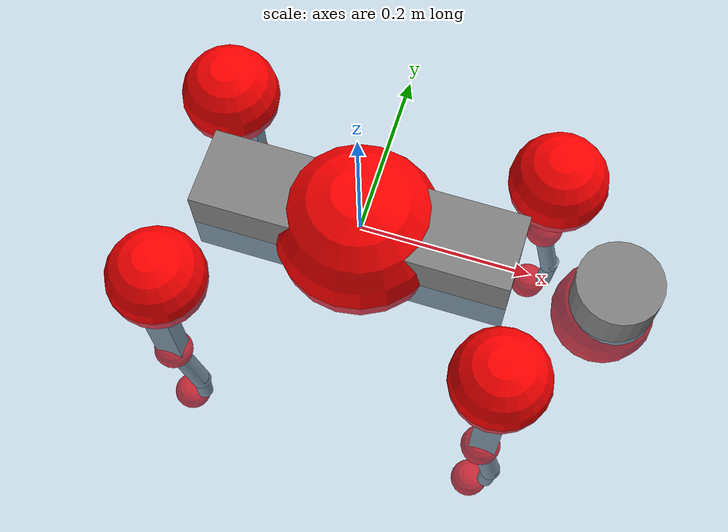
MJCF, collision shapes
<mujoco model="go2">
  <compiler angle="radian" assetdir="assets" balanceinertia="true" inertiafromgeom="false"/>

  <option timestep="0.005" density="1.2" viscosity="2e-05"/>

  <size nkey="1"/>

  <visual>
    <quality shadowsize="8192"/>
    <map shadowclip="0.5"/>
  </visual>

  <default>
    <default class="/">
      <geom contype="0" conaffinity="0" group="1" solref="-1000 -80"/>
      <site size="0.01 0.005 0.005" group="5"/>
      <general forcelimited="true" biastype="affine" gainprm="20" biasprm="0 -20 -0.5"/>
      <default class="go2">
        <joint armature="0.01" damping="0.01" frictionloss="0.2"/>
        <geom condim="1" margin="0.001"/>
        <default class="visual">
          <geom type="mesh" group="2"/>
        </default>
        <default class="collision">
          <geom group="3"/>
          <default class="foot">
            <geom size="0.022 0 0" condim="6" priority="1" friction="0.8 0.02 0.01" solimp="0.015 1 0.022"/>
          </default>
        </default>
        <default class="reward_collision_sphere">
          <geom group="5" rgba="1 0 0 1"/>
        </default>
      </default>
    </default>
  </default>

  <asset>
    <texture type="skybox" colorspace="auto" name="//unnamed_texture_0" builtin="gradient" rgb1="0.95 0.95 0.95" rgb2="0.95 0.95 0.95" width="100" height="600"/>
    <texture type="2d" colorspace="auto" name="texplane" builtin="checker" rgb1="0.345 0.575 0.748" rgb2="0.345 0.575 0.748" markrgb="1 1 1" width="512" height="512"/>
    <material name="MatPlane" class="/" texture="texplane" texuniform="true" texrepeat="2 2" specular="0.9"/>
    <material name="metal" class="/" rgba="0.9 0.95 0.95 1"/>
    <material name="black" class="/" rgba="0 0 0 1"/>
    <material name="white" class="/"/>
    <material name="gray" class="/" rgba="0.671705 0.692426 0.77427 1"/>
    <mesh name="base_0" class="/" file="base_0.obj"/>
    <mesh name="base_1" class="/" file="base_1.obj"/>
    <mesh name="base_2" class="/" file="base_2.obj"/>
    <mesh name="base_3" class="/" file="base_3.obj"/>
    <mesh name="base_4" class="/" file="base_4.obj"/>
    <mesh name="hip_0" class="/" file="hip_0.obj"/>
    <mesh name="hip_1" class="/" file="hip_1.obj"/>
    <mesh name="thigh_0" class="/" file="thigh_0.obj"/>
    <mesh name="thigh_1" class="/" file="thigh_1.obj"/>
    <mesh name="thigh_mirror_0" class="/" file="thigh_mirror_0.obj"/>
    <mesh name="thigh_mirror_1" class="/" file="thigh_mirror_1.obj"/>
    <mesh name="calf_0" class="/" file="calf_0.obj"/>
    <mesh name="calf_1" class="/" file="calf_1.obj"/>
    <mesh name="calf_mirror_0" class="/" file="calf_mirror_0.obj"/>
    <mesh name="calf_mirror_1" class="/" file="calf_mirror_1.obj"/>
    <mesh name="foot" class="/" file="foot.obj"/>
  </asset>

  <worldbody>
    <geom name="floor" class="/" size="100 100 0.125" type="plane" group="0" material="MatPlane"/>
    <light name="toplight_shadow" class="/" pos="0 0 5" dir="0.0990148 0.0990148 -0.990148" type="directional" ambient="0.04 0.04 0.04" diffuse="0.55 0.55 0.55" specular="0.12 0.12 0.12"/>
    <light name="toplight_fill" class="/" pos="0 0 5" dir="0.0990148 0.0990148 -0.990148" type="directional" castshadow="false" ambient="0.04 0.04 0.04" diffuse="0.3 0.3 0.3" specular="0.08 0.08 0.08"/>
    <body name="trunk" childclass="go2" pos="4.39314e-05 -0.00281333 -0.000737151" quat="1 1.38147e-05 1.48393e-05 5.41087e-05">
      <inertial pos="0.0222889 -0.00295515 -0.0044197" quat="0.000133187 0.71944 -0.00281686 0.694549" mass="6.52102" diaginertia="0.128514 0.129443 0.0109752"/>
      <joint name="//unnamed_joint_0" type="free" armature="0" damping="0" frictionloss="0"/>
      <geom name="//unnamed_geom_1" class="visual" material="black" mesh="base_0"/>
      <geom name="//unnamed_geom_2" class="visual" material="black" mesh="base_1"/>
      <geom name="//unnamed_geom_3" class="visual" material="black" mesh="base_2"/>
      <geom name="//unnamed_geom_4" class="visual" material="white" mesh="base_3"/>
      <geom name="//unnamed_geom_5" class="visual" material="gray" mesh="base_4"/>
      <geom name="trunk_1" class="collision" size="0.185482 0.0460994 0.0562067" type="box"/>
      <geom name="trunk_2" class="collision" size="0.0493041 0.0443737" pos="0.297341 0 0.00852799" type="cylinder"/>
      <geom name="trunk_3" class="collision" size="0.0463459" pos="0.305688 0 -0.0511679"/>
      <geom name="//unnamed_geom_9" class="reward_collision_sphere" size="0.0986083"/>
      <geom name="//unnamed_geom_10" class="reward_collision_sphere" size="0.059165" pos="0.292125 0 -0.038376"/>
      <site name="imu" pos="-0.0127157 0.0108752 0.0220271" size="0.00986083"/>
      <camera name="track" pos="0 -2.1243 0" quat="0.707107 0.707107 0 0" mode="trackcom"/>
      <camera name="ego_camera" pos="0.32551 0 0.038376" quat="-0.5 -0.5 0.5 0.5"/>
      <body name="FL_hip" pos="0.20387 0.0512378 0.00227879" quat="0.999999 0.000425555 -0.00114286 -0.000263049">
        <inertial pos="-0.00455578 0.00232048 0.00183596" quat="0.497817 0.496129 0.50472 0.50129" mass="0.62366" diaginertia="0.00109126 0.000767706 0.0002161"/>
        <joint name="FL_hip_joint" pos="0 0 0" axis="0.999985 0.00514707 0.00186736" stiffness="0.013146" range="-1.01393 1.08636" armature="0.00979474" damping="0" frictionloss="0.223156"/>
        <geom name="//unnamed_geom_11" class="visual" material="metal" mesh="hip_0"/>
        <geom name="//unnamed_geom_12" class="visual" material="gray" mesh="hip_1"/>
        <geom name="//unnamed_geom_13" class="collision" size="0.0453598 0.0197217" pos="0 0.0849718 0" quat="0.707107 0.707107 0 0" type="cylinder"/>
        <geom name="//unnamed_geom_14" class="reward_collision_sphere" size="0.059165" pos="0 0.0743503 0"/>
        <body name="FL_thigh" pos="-0.000296302 0.103242 0.000625374" quat="0.999999 0.000944841 0.00100687 0.000668722">
          <inertial pos="-0.00121706 -0.0212601 -0.0288915" quat="0.829438 0.0863042 -0.00646045 0.551854" mass="1.10321" diaginertia="0.00727511 0.0078871 0.00039597"/>
          <joint name="FL_thigh_joint" pos="0 0 0" axis="0.0128448 0.999824 0.0136456" stiffness="0.00540797" range="-1.53394 3.53972" armature="0.0112521" damping="0" frictionloss="0.204083"/>
          <geom name="//unnamed_geom_15" class="visual" material="metal" mesh="thigh_0"/>
          <geom name="//unnamed_geom_16" class="visual" material="gray" mesh="thigh_1"/>
          <geom name="//unnamed_geom_17" class="collision" size="0.105018 0.0120795 0.0167634" pos="0 0 -0.0908231" quat="0.707107 0 0.707107 0" type="box"/>
          <body name="FL_calf" pos="9.31747e-05 -0.00272542 -0.182667" quat="0.999999 0.000188931 -0.000954548 -0.000363748">
            <inertial pos="0.00917615 -0.000770288 -0.122255" quat="0.710605 0.00108628 -0.00464648 0.703575" mass="0.234513" diaginertia="0.00177845 0.00203842 2.33022e-05"/>
            <joint name="FL_calf_joint" pos="0 0 0" axis="0.00616027 0.999977 0.00283491" range="-2.76513 -0.830495" armature="0.00862757" damping="0.00323339" frictionloss="0.199212"/>
            <geom name="//unnamed_geom_18" class="visual" material="gray" mesh="calf_0"/>
            <geom name="//unnamed_geom_19" class="visual" material="black" mesh="calf_1"/>
            <geom name="FL_calf0" class="collision" size="0.011833 0.059165" pos="0.00834642 0 -0.0511679" quat="0.994493 0 -0.104807 0" type="cylinder"/>
            <geom name="//unnamed_geom_21" class="collision" size="0.0108469 0.0320477" pos="0.020866 0 -0.126214" quat="0.999688 0 0.0249974 0" type="cylinder"/>
            <geom name="//unnamed_geom_22" class="visual" pos="0 0 -0.181646" quat="1 0 0 0" material="black" mesh="foot"/>
            <geom name="FL_foot" class="foot" size="0.0159603" pos="-0.0020866 0 -0.181646"/>
            <geom name="//unnamed_geom_24" class="reward_collision_sphere" size="0.0246521"/>
            <geom name="//unnamed_geom_25" class="reward_collision_sphere" size="0.0246521" pos="-0.0020866 0 -0.181646"/>
            <site name="FL_foot" class="foot" pos="-0.0020866 0 -0.181646" size="0.00986083"/>
          </body>
        </body>
      </body>
      <body name="FR_hip" pos="0.201468 -0.0517592 -0.00245122" quat="1 8.17364e-05 9.24156e-05 4.86014e-06">
        <inertial pos="-0.00565512 -0.00303454 -0.000423823" quat="0.49819 0.505873 0.499842 0.496042" mass="0.622825" diaginertia="0.00108266 0.000781494 0.000222276"/>
        <joint name="FR_hip_joint" pos="0 0 0" axis="0.999921 0.00885765 0.00892444" range="-1.04948 1.05503" armature="0.00983177" damping="0.0113197" frictionloss="0.202609"/>
        <geom name="//unnamed_geom_26" class="visual" pos="0 1.82376e-09 7.82248e-08" quat="4.63268e-05 1 0 0" material="metal" mesh="hip_0"/>
        <geom name="//unnamed_geom_27" class="visual" pos="0 2.95653e-09 -1.9348e-07" quat="4.63268e-05 1 0 0" material="gray" mesh="hip_1"/>
        <geom name="//unnamed_geom_28" class="collision" size="0.0453598 0.0197217" pos="0 -0.0849718 0" quat="0.707107 0.707107 0 0" type="cylinder"/>
        <geom name="//unnamed_geom_29" class="reward_collision_sphere" size="0.059165" pos="0 -0.0743503 0"/>
        <body name="FR_thigh" pos="0.00245621 -0.0997943 0.00234133" quat="1 -0.000493382 0.000698744 0.00029699">
          <inertial pos="-0.00407725 0.0216752 -0.027569" quat="0.5447 -0.0129855 0.0810093 0.834608" mass="1.18214" diaginertia="0.00755488 0.00818445 0.000405902"/>
          <joint name="FR_thigh_joint" pos="0 0 0" axis="0.00330246 -0.99999 0.00287929" range="-3.5369 1.57045" armature="0.00941447" damping="0.0127201" frictionloss="0.198297"/>
          <geom name="//unnamed_geom_30" class="visual" material="metal" mesh="thigh_mirror_0"/>
          <geom name="//unnamed_geom_31" class="visual" material="gray" mesh="thigh_mirror_1"/>
          <geom name="//unnamed_geom_32" class="collision" size="0.105018 0.0120795 0.0167634" pos="0 0 -0.0908231" quat="0.707107 0 0.707107 0" type="box"/>
          <body name="FR_calf" pos="-0.00274671 -0.00122884 -0.183595" quat="0.999999 0.00132664 -0.000326083 7.2297e-05">
            <inertial pos="0.00771083 0.000897309 -0.118333" quat="0.697468 -0.00304833 -0.00689867 0.716576" mass="0.228956" diaginertia="0.00182213 0.00196675 2.39792e-05"/>
            <joint name="FR_calf_joint" pos="0 0 0" axis="-0.0102073 -0.999945 0.00222914" range="0.815512 2.72346" armature="0.0110038" damping="0.0216071" frictionloss="0.170054"/>
            <geom name="//unnamed_geom_33" class="visual" material="gray" mesh="calf_mirror_0"/>
            <geom name="//unnamed_geom_34" class="visual" material="black" mesh="calf_mirror_1"/>
            <geom name="FR_calf0" class="collision" size="0.0128191 0.059165" pos="0.010433 0 -0.0511679" quat="0.995004 0 -0.0998334 0" type="cylinder"/>
            <geom name="//unnamed_geom_36" class="collision" size="0.0108469 0.0320477" pos="0.020866 0 -0.126214" quat="0.999688 0 0.0249974 0" type="cylinder"/>
            <geom name="//unnamed_geom_37" class="visual" pos="0 0 -0.181646" quat="1 0 0 0" material="black" mesh="foot"/>
            <geom name="FR_foot" class="foot" size="0.0202983" pos="-0.0020866 0 -0.181646"/>
            <geom name="//unnamed_geom_39" class="reward_collision_sphere" size="0.0246521"/>
            <geom name="//unnamed_geom_40" class="reward_collision_sphere" size="0.0246521" pos="-0.0020866 0 -0.181646"/>
            <site name="FR_foot" class="foot" pos="-0.0020866 0 -0.181646" size="0.00986083"/>
          </body>
        </body>
      </body>
      <body name="RL_hip" pos="-0.202261 0.0506439 0.0018684" quat="1 0.000126204 -4.83969e-05 0.000423828">
        <inertial pos="0.00541573 -0.000508669 0.00220274" quat="0.505745 0.49812 0.497094 0.498996" mass="0.659066" diaginertia="0.0011042 0.000816449 0.000219161"/>
        <joint name="RL_hip_joint" pos="0 0 0" axis="-0.999759 -0.00678645 0.0208632" range="-1.0594 1.0184" armature="0.0098514" damping="0.011936" frictionloss="0.188282"/>
        <geom name="//unnamed_geom_41" class="visual" pos="-1.65958e-09 0 -3.25317e-07" quat="4.63268e-05 0 1 0" material="metal" mesh="hip_0"/>
        <geom name="//unnamed_geom_42" class="visual" pos="-2.69039e-09 0 -2.8851e-07" quat="4.63268e-05 0 1 0" material="gray" mesh="hip_1"/>
        <geom name="//unnamed_geom_43" class="collision" size="0.0453598 0.0197217" pos="0 0.0849718 0" quat="0.707107 0.707107 0 0" type="cylinder"/>
        <geom name="//unnamed_geom_44" class="reward_collision_sphere" size="0.059165" pos="0 0.0743503 0"/>
        <body name="RL_thigh" pos="-0.00217809 0.101377 -0.00139728" quat="1 -8.30112e-05 -0.000380296 -0.000138836">
          <inertial pos="-0.00420579 -0.0225648 -0.0304417" quat="0.827923 0.0864078 -0.0093587 0.554067" mass="1.14041" diaginertia="0.00745336 0.00808237 0.000403682"/>
          <joint name="RL_thigh_joint" pos="0 0 0" axis="-0.00271808 0.999995 -0.00129693" stiffness="0.00542939" range="-0.578573 4.58456" armature="0.00948654" damping="0" frictionloss="0.204646"/>
          <geom name="//unnamed_geom_45" class="visual" material="metal" mesh="thigh_0"/>
          <geom name="//unnamed_geom_46" class="visual" material="gray" mesh="thigh_1"/>
          <geom name="//unnamed_geom_47" class="collision" size="0.105018 0.0120795 0.0167634" pos="0 0 -0.0908231" quat="0.707107 0 0.707107 0" type="box"/>
          <body name="RL_calf" pos="-0.00194412 -0.00238805 -0.181616" quat="1 -0.000281647 -0.000194172 0.000103548">
            <inertial pos="0.00717249 -0.000338829 -0.119445" quat="0.710466 0.00174705 -0.00402327 0.703718" mass="0.245345" diaginertia="0.00196066 0.0020404 2.46272e-05"/>
            <joint name="RL_calf_joint" pos="0 0 0" axis="-0.00261685 0.999903 -0.0136758" stiffness="0.00239514" range="-2.67943 -0.892705" armature="0.0100936" damping="0" frictionloss="0.192053"/>
            <geom name="//unnamed_geom_48" class="visual" material="gray" mesh="calf_0"/>
            <geom name="//unnamed_geom_49" class="visual" material="black" mesh="calf_1"/>
            <geom name="RL_calf0" class="collision" size="0.0128191 0.059165" pos="0.010433 0 -0.0511679" quat="0.995004 0 -0.0998334 0" type="cylinder"/>
            <geom name="//unnamed_geom_51" class="collision" size="0.0108469 0.0320477" pos="0.020866 0 -0.126214" quat="0.999688 0 0.0249974 0" type="cylinder"/>
            <geom name="//unnamed_geom_52" class="visual" pos="0 0 -0.181646" quat="1 0 0 0" material="black" mesh="foot"/>
            <geom name="RL_foot" class="foot" size="0.0198582" pos="-0.0020866 0 -0.181646"/>
            <geom name="//unnamed_geom_54" class="reward_collision_sphere" size="0.0246521"/>
            <geom name="//unnamed_geom_55" class="reward_collision_sphere" size="0.0246521" pos="-0.0020866 0 -0.181646"/>
            <site name="RL_foot" class="foot" pos="-0.0020866 0 -0.181646" size="0.00986083"/>
          </body>
        </body>
      </body>
      <body name="RR_hip" pos="-0.20247 -0.0490463 -0.00335339" quat="0.999999 -0.00110276 0.000627452 5.16119e-05">
        <inertial pos="0.00504165 0.000851686 -0.00276775" quat="0.499966 0.49862 0.497739 0.503654" mass="0.668461" diaginertia="0.00116207 0.000835543 0.000229468"/>
        <joint name="RR_hip_joint" pos="0 0 0" axis="-0.999943 0.00779168 0.00732686" stiffness="0.00469093" range="-1.02472 0.995993" armature="0.00975845" damping="0.00340512" frictionloss="0.18827"/>
        <geom name="//unnamed_geom_56" class="visual" pos="1.66024e-09 1.82376e-09 -4.03542e-07" quat="2.14617e-09 4.63268e-05 4.63268e-05 -1" material="metal" mesh="hip_0"/>
        <geom name="//unnamed_geom_57" class="visual" pos="2.68877e-09 2.95653e-09 -9.50298e-08" quat="2.14617e-09 4.63268e-05 4.63268e-05 -1" material="gray" mesh="hip_1"/>
        <geom name="//unnamed_geom_58" class="collision" size="0.0453598 0.0197217" pos="0 -0.0849718 0" quat="0.707107 0.707107 0 0" type="cylinder"/>
        <geom name="//unnamed_geom_59" class="reward_collision_sphere" size="0.059165" pos="0 -0.0743503 0"/>
        <body name="RR_thigh" pos="0.000190471 -0.0988836 0.00150797" quat="0.999999 0.00138658 5.05748e-05 -0.000456855">
          <inertial pos="-0.00366911 0.0211397 -0.0255815" quat="0.550363 -0.0174958 0.087128 0.830183" mass="1.07229" diaginertia="0.00708051 0.00769874 0.000385296"/>
          <joint name="RR_thigh_joint" pos="0 0 0" axis="-0.00455513 -0.999989 0.00147811" range="-4.55821 0.568759" armature="0.00991751" damping="0.013001" frictionloss="0.18739"/>
          <geom name="//unnamed_geom_60" class="visual" material="metal" mesh="thigh_mirror_0"/>
          <geom name="//unnamed_geom_61" class="visual" material="gray" mesh="thigh_mirror_1"/>
          <geom name="//unnamed_geom_62" class="collision" size="0.105018 0.0120795 0.0167634" pos="0 0 -0.0908231" quat="0.707107 0 0.707107 0" type="box"/>
          <body name="RR_calf" pos="-0.000856227 -0.000353071 -0.181029" quat="1 0.000135848 3.1319e-05 0.000800147">
            <inertial pos="0.00805294 0.000620976 -0.120117" quat="0.704179 -0.00700755 -0.00155866 0.709986" mass="0.233891" diaginertia="0.00191335 0.00199235 2.38653e-05"/>
            <joint name="RR_calf_joint" pos="0 0 0" axis="-0.00604809 -0.999981 0.000674838" range="0.779294 2.77552" armature="0.00853966" damping="0.012057" frictionloss="0.201232"/>
            <geom name="//unnamed_geom_63" class="visual" material="gray" mesh="calf_mirror_0"/>
            <geom name="//unnamed_geom_64" class="visual" material="black" mesh="calf_mirror_1"/>
            <geom name="RR_calf0" class="collision" size="0.0128191 0.059165" pos="0.010433 0 -0.0511679" quat="0.995004 0 -0.0998334 0" type="cylinder"/>
            <geom name="//unnamed_geom_66" class="collision" size="0.0108469 0.0320477" pos="0.020866 0 -0.126214" quat="0.999688 0 0.0249974 0" type="cylinder"/>
            <geom name="//unnamed_geom_67" class="visual" pos="0 0 -0.181646" quat="1 0 0 0" material="black" mesh="foot"/>
            <geom name="RR_foot" class="foot" size="0.0195863" pos="-0.0020866 0 -0.181646"/>
            <geom name="//unnamed_geom_69" class="reward_collision_sphere" size="0.0246521"/>
            <geom name="//unnamed_geom_70" class="reward_collision_sphere" size="0.0246521" pos="-0.0020866 0 -0.181646"/>
            <site name="RR_foot" class="foot" pos="-0.0020866 0 -0.181646" size="0.00986083"/>
          </body>
        </body>
      </body>
    </body>
  </worldbody>

  <contact>
    <pair class="/" geom1="floor" geom2="FL_foot" name="//unnamed_contact_0"/>
    <pair class="/" geom1="floor" geom2="FR_foot" name="//unnamed_contact_1"/>
    <pair class="/" geom1="floor" geom2="RL_foot" name="//unnamed_contact_2"/>
    <pair class="/" geom1="floor" geom2="RR_foot" name="//unnamed_contact_3"/>
  </contact>

  <actuator>
    <general name="FL_hip" class="/" joint="FL_hip_joint" forcerange="-24.9822 24.9822" gainprm="20.9998" biasprm="0 -20.9998 -0.498756"/>
    <general name="FL_thigh" class="/" joint="FL_thigh_joint" forcerange="-21.1709 21.1709" gainprm="20.9998" biasprm="0 -20.9998 -0.498756"/>
    <general name="FL_calf" class="/" joint="FL_calf_joint" forcerange="-44.641 44.641" gainprm="20.9998" biasprm="0 -20.9998 -0.498756"/>
    <general name="FR_hip" class="/" joint="FR_hip_joint" forcerange="-25.445 25.445" gainprm="20.9998" biasprm="0 -20.9998 -0.498756"/>
    <general name="FR_thigh" class="/" joint="FR_thigh_joint" forcerange="-25.4324 25.4324" gainprm="20.9998" biasprm="0 -20.9998 -0.498756"/>
    <general name="FR_calf" class="/" joint="FR_calf_joint" forcerange="-48.9291 48.9291" gainprm="20.9998" biasprm="0 -20.9998 -0.498756"/>
    <general name="RL_hip" class="/" joint="RL_hip_joint" forcerange="-23.8485 23.8485" gainprm="20.9998" biasprm="0 -20.9998 -0.498756"/>
    <general name="RL_thigh" class="/" joint="RL_thigh_joint" forcerange="-22.4369 22.4369" gainprm="20.9998" biasprm="0 -20.9998 -0.498756"/>
    <general name="RL_calf" class="/" joint="RL_calf_joint" forcerange="-41.0639 41.0639" gainprm="20.9998" biasprm="0 -20.9998 -0.498756"/>
    <general name="RR_hip" class="/" joint="RR_hip_joint" forcerange="-21.5011 21.5011" gainprm="20.9998" biasprm="0 -20.9998 -0.498756"/>
    <general name="RR_thigh" class="/" joint="RR_thigh_joint" forcerange="-24.2762 24.2762" gainprm="20.9998" biasprm="0 -20.9998 -0.498756"/>
    <general name="RR_calf" class="/" joint="RR_calf_joint" forcerange="-45.1827 45.1827" gainprm="20.9998" biasprm="0 -20.9998 -0.498756"/>
  </actuator>

  <sensor>
    <gyro site="imu" name="imu_angular_velocity"/>
    <velocimeter site="imu" name="imu_linear_velocity"/>
    <framelinvel objtype="site" objname="FL_foot" name="FL_foot_global_linear_velocity"/>
    <framelinvel objtype="site" objname="FR_foot" name="FR_foot_global_linear_velocity"/>
    <framelinvel objtype="site" objname="RL_foot" name="RL_foot_global_linear_velocity"/>
    <framelinvel objtype="site" objname="RR_foot" name="RR_foot_global_linear_velocity"/>
  </sensor>

  <keyframe>
    <key name="home" qpos="0 0 0.325 1 0 0 0 0.1 0.8 -1.5 -0.1 -0.8 1.5 -0.1 0.8 -1.5 0.1 -0.8 1.5"/>
  </keyframe>
</mujoco>
